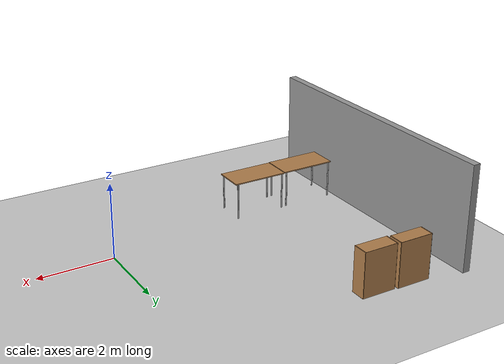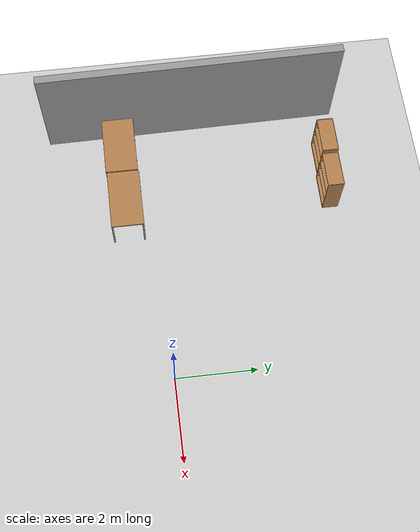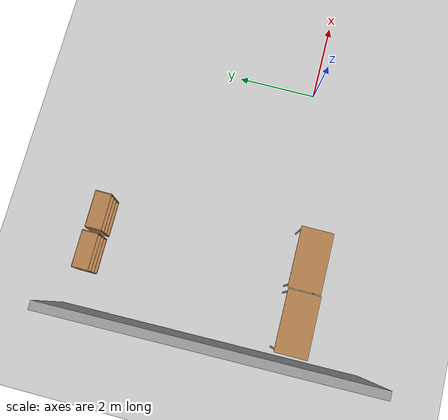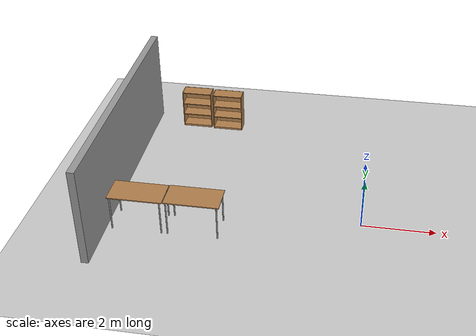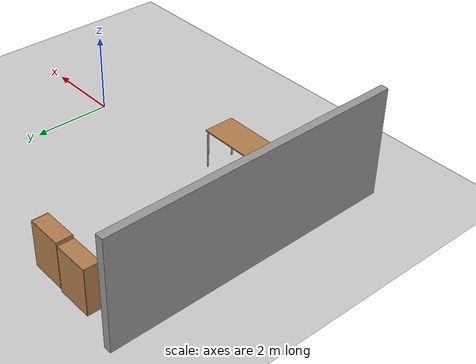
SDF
<sdf version="1.6">
 <world name="default">
  <model name="ground_plane">
   <static>1</static>
   <link name="link">
    <collision name="collision">
     <geometry><plane><normal>0 0 1</normal><size>100 100</size></plane></geometry>
     <surface>
      <contact><collide_bitmask>65535</collide_bitmask></contact>
      <friction><ode><mu>100</mu><mu2>50</mu2></ode></friction>
     </surface>
    </collision>
    <visual name="visual">
     <cast_shadows>0</cast_shadows>
     <geometry><plane><normal>0 0 1</normal><size>100 100</size></plane></geometry>
     <material>
      <script><uri>file://media/materials/scripts/gazebo.material</uri><name>Gazebo/Grey</name></script>
     </material>
    </visual>
   </link>
  </model>
  <model name="grey_wall_0">
   <static>1</static>
   <link name="link">
    <pose>0 0 1.4 0 -0 0</pose>
    <collision name="collision"><geometry><box><size>7.5 0.2 2.8</size></box></geometry></collision>
    <visual name="visual">
     <cast_shadows>0</cast_shadows>
     <geometry><box><size>7.5 0.2 2.8</size></box></geometry>
     <material>
      <script>
       <uri>model://grey_wall/materials/scripts</uri>
       <uri>model://grey_wall/materials/textures</uri>
       <name>vrc/grey_wall</name>
      </script>
     </material>
    </visual>
   </link>
   <pose>-6.9051 1.14817 0 0 0 -1.55661</pose>
  </model>
  <model name="table_8">
   <static>1</static>
   <link name="link">
    <collision name="surface">
     <pose>0 0 1 0 -0 0</pose>
     <geometry><box><size>1.5 0.8 0.03</size></box></geometry>
     <surface><friction><ode><mu>0.6</mu><mu2>0.6</mu2></ode></friction></surface>
    </collision>
    <visual name="visual1">
     <pose>0 0 1 0 -0 0</pose>
     <geometry><box><size>1.5 0.8 0.03</size></box></geometry>
     <material>
      <script><uri>file://media/materials/scripts/gazebo.material</uri><name>Gazebo/Wood</name></script>
     </material>
    </visual>
    <collision name="front_left_leg">
     <pose>0.68 0.38 0.5 0 -0 0</pose>
     <geometry><cylinder><radius>0.02</radius><length>1</length></cylinder></geometry>
    </collision>
    <visual name="front_left_leg">
     <pose>0.68 0.38 0.5 0 -0 0</pose>
     <geometry><cylinder><radius>0.02</radius><length>1</length></cylinder></geometry>
     <material>
      <script><uri>file://media/materials/scripts/gazebo.material</uri><name>Gazebo/Grey</name></script>
     </material>
    </visual>
    <collision name="front_right_leg">
     <pose>0.68 -0.38 0.5 0 -0 0</pose>
     <geometry><cylinder><radius>0.02</radius><length>1</length></cylinder></geometry>
    </collision>
    <visual name="front_right_leg">
     <pose>0.68 -0.38 0.5 0 -0 0</pose>
     <geometry><cylinder><radius>0.02</radius><length>1</length></cylinder></geometry>
     <material>
      <script><uri>file://media/materials/scripts/gazebo.material</uri><name>Gazebo/Grey</name></script>
     </material>
    </visual>
    <collision name="back_right_leg">
     <pose>-0.68 -0.38 0.5 0 -0 0</pose>
     <geometry><cylinder><radius>0.02</radius><length>1</length></cylinder></geometry>
    </collision>
    <visual name="back_right_leg">
     <pose>-0.68 -0.38 0.5 0 -0 0</pose>
     <geometry><cylinder><radius>0.02</radius><length>1</length></cylinder></geometry>
     <material>
      <script><uri>file://media/materials/scripts/gazebo.material</uri><name>Gazebo/Grey</name></script>
     </material>
    </visual>
    <collision name="back_left_leg">
     <pose>-0.68 0.38 0.5 0 -0 0</pose>
     <geometry><cylinder><radius>0.02</radius><length>1</length></cylinder></geometry>
    </collision>
    <visual name="back_left_leg">
     <pose>-0.68 0.38 0.5 0 -0 0</pose>
     <geometry><cylinder><radius>0.02</radius><length>1</length></cylinder></geometry>
     <material>
      <script><uri>file://media/materials/scripts/gazebo.material</uri><name>Gazebo/Grey</name></script>
     </material>
    </visual>
   </link>
   <pose>-5.92661 -0.763536 0 0 -0 0</pose>
  </model>
  <model name="table_10">
   <static>1</static>
   <link name="link">
    <collision name="surface">
     <pose>0 0 1 0 -0 0</pose>
     <geometry><box><size>1.5 0.8 0.03</size></box></geometry>
     <surface><friction><ode><mu>0.6</mu><mu2>0.6</mu2></ode></friction></surface>
    </collision>
    <visual name="visual1">
     <pose>0 0 1 0 -0 0</pose>
     <geometry><box><size>1.5 0.8 0.03</size></box></geometry>
     <material>
      <script><uri>file://media/materials/scripts/gazebo.material</uri><name>Gazebo/Wood</name></script>
     </material>
    </visual>
    <collision name="front_left_leg">
     <pose>0.68 0.38 0.5 0 -0 0</pose>
     <geometry><cylinder><radius>0.02</radius><length>1</length></cylinder></geometry>
    </collision>
    <visual name="front_left_leg">
     <pose>0.68 0.38 0.5 0 -0 0</pose>
     <geometry><cylinder><radius>0.02</radius><length>1</length></cylinder></geometry>
     <material>
      <script><uri>file://media/materials/scripts/gazebo.material</uri><name>Gazebo/Grey</name></script>
     </material>
    </visual>
    <collision name="front_right_leg">
     <pose>0.68 -0.38 0.5 0 -0 0</pose>
     <geometry><cylinder><radius>0.02</radius><length>1</length></cylinder></geometry>
    </collision>
    <visual name="front_right_leg">
     <pose>0.68 -0.38 0.5 0 -0 0</pose>
     <geometry><cylinder><radius>0.02</radius><length>1</length></cylinder></geometry>
     <material>
      <script><uri>file://media/materials/scripts/gazebo.material</uri><name>Gazebo/Grey</name></script>
     </material>
    </visual>
    <collision name="back_right_leg">
     <pose>-0.68 -0.38 0.5 0 -0 0</pose>
     <geometry><cylinder><radius>0.02</radius><length>1</length></cylinder></geometry>
    </collision>
    <visual name="back_right_leg">
     <pose>-0.68 -0.38 0.5 0 -0 0</pose>
     <geometry><cylinder><radius>0.02</radius><length>1</length></cylinder></geometry>
     <material>
      <script><uri>file://media/materials/scripts/gazebo.material</uri><name>Gazebo/Grey</name></script>
     </material>
    </visual>
    <collision name="back_left_leg">
     <pose>-0.68 0.38 0.5 0 -0 0</pose>
     <geometry><cylinder><radius>0.02</radius><length>1</length></cylinder></geometry>
    </collision>
    <visual name="back_left_leg">
     <pose>-0.68 0.38 0.5 0 -0 0</pose>
     <geometry><cylinder><radius>0.02</radius><length>1</length></cylinder></geometry>
     <material>
      <script><uri>file://media/materials/scripts/gazebo.material</uri><name>Gazebo/Grey</name></script>
     </material>
    </visual>
   </link>
   <pose>-4.40357 -0.743529 0 0 -0 0</pose>
  </model>
  <model name="bookshelf">
   <static>1</static>
   <link name="link">
    <inertial><mass>1</mass></inertial>
    <collision name="back">
     <pose>0 0.005 0.6 0 -0 0</pose>
     <geometry><box><size>0.9 0.01 1.2</size></box></geometry>
    </collision>
    <visual name="visual1">
     <pose>0 0.005 0.6 0 -0 0</pose>
     <geometry><box><size>0.9 0.01 1.2</size></box></geometry>
     <material>
      <script><uri>file://media/materials/scripts/gazebo.material</uri><name>Gazebo/Wood</name></script>
     </material>
    </visual>
    <collision name="left_side">
     <pose>0.45 -0.195 0.6 0 -0 0</pose>
     <geometry><box><size>0.02 0.4 1.2</size></box></geometry>
    </collision>
    <visual name="visual2">
     <pose>0.45 -0.195 0.6 0 -0 0</pose>
     <geometry><box><size>0.02 0.4 1.2</size></box></geometry>
     <material>
      <script><uri>file://media/materials/scripts/gazebo.material</uri><name>Gazebo/Wood</name></script>
     </material>
    </visual>
    <collision name="right_side">
     <pose>-0.45 -0.195 0.6 0 -0 0</pose>
     <geometry><box><size>0.02 0.4 1.2</size></box></geometry>
    </collision>
    <visual name="visual3">
     <pose>-0.45 -0.195 0.6 0 -0 0</pose>
     <geometry><box><size>0.02 0.4 1.2</size></box></geometry>
     <material>
      <script><uri>file://media/materials/scripts/gazebo.material</uri><name>Gazebo/Wood</name></script>
     </material>
    </visual>
    <collision name="bottom">
     <pose>0 -0.195 0.03 0 -0 0</pose>
     <geometry><box><size>0.88 0.4 0.06</size></box></geometry>
    </collision>
    <visual name="visual4">
     <pose>0 -0.195 0.03 0 -0 0</pose>
     <geometry><box><size>0.88 0.4 0.06</size></box></geometry>
     <material>
      <script><uri>file://media/materials/scripts/gazebo.material</uri><name>Gazebo/Wood</name></script>
     </material>
    </visual>
    <collision name="top">
     <pose>0 -0.195 1.19 0 -0 0</pose>
     <geometry><box><size>0.88 0.4 0.02</size></box></geometry>
    </collision>
    <visual name="visual5">
     <pose>0 -0.195 1.19 0 -0 0</pose>
     <geometry><box><size>0.88 0.4 0.02</size></box></geometry>
     <material>
      <script><uri>file://media/materials/scripts/gazebo.material</uri><name>Gazebo/Wood</name></script>
     </material>
    </visual>
    <collision name="low_shelf">
     <pose>0 -0.195 0.43 0 -0 0</pose>
     <geometry><box><size>0.88 0.4 0.02</size></box></geometry>
    </collision>
    <visual name="visual6">
     <pose>0 -0.195 0.43 0 -0 0</pose>
     <geometry><box><size>0.88 0.4 0.02</size></box></geometry>
     <material>
      <script><uri>file://media/materials/scripts/gazebo.material</uri><name>Gazebo/Wood</name></script>
     </material>
    </visual>
    <collision name="high_shelf">
     <pose>0 -0.195 0.8 0 -0 0</pose>
     <geometry><box><size>0.88 0.4 0.02</size></box></geometry>
    </collision>
    <visual name="visual7">
     <pose>0 -0.195 0.8 0 -0 0</pose>
     <geometry><box><size>0.88 0.4 0.02</size></box></geometry>
     <material>
      <script><uri>file://media/materials/scripts/gazebo.material</uri><name>Gazebo/Wood</name></script>
     </material>
    </visual>
   </link>
   <pose>-5.52954 4.67114 0 0 -0 0</pose>
  </model>
  <model name="bookshelf_0">
   <static>1</static>
   <link name="link">
    <inertial><mass>1</mass></inertial>
    <collision name="back">
     <pose>0 0.005 0.6 0 -0 0</pose>
     <geometry><box><size>0.9 0.01 1.2</size></box></geometry>
    </collision>
    <visual name="visual1">
     <pose>0 0.005 0.6 0 -0 0</pose>
     <geometry><box><size>0.9 0.01 1.2</size></box></geometry>
     <material>
      <script><uri>file://media/materials/scripts/gazebo.material</uri><name>Gazebo/Wood</name></script>
     </material>
    </visual>
    <collision name="left_side">
     <pose>0.45 -0.195 0.6 0 -0 0</pose>
     <geometry><box><size>0.02 0.4 1.2</size></box></geometry>
    </collision>
    <visual name="visual2">
     <pose>0.45 -0.195 0.6 0 -0 0</pose>
     <geometry><box><size>0.02 0.4 1.2</size></box></geometry>
     <material>
      <script><uri>file://media/materials/scripts/gazebo.material</uri><name>Gazebo/Wood</name></script>
     </material>
    </visual>
    <collision name="right_side">
     <pose>-0.45 -0.195 0.6 0 -0 0</pose>
     <geometry><box><size>0.02 0.4 1.2</size></box></geometry>
    </collision>
    <visual name="visual3">
     <pose>-0.45 -0.195 0.6 0 -0 0</pose>
     <geometry><box><size>0.02 0.4 1.2</size></box></geometry>
     <material>
      <script><uri>file://media/materials/scripts/gazebo.material</uri><name>Gazebo/Wood</name></script>
     </material>
    </visual>
    <collision name="bottom">
     <pose>0 -0.195 0.03 0 -0 0</pose>
     <geometry><box><size>0.88 0.4 0.06</size></box></geometry>
    </collision>
    <visual name="visual4">
     <pose>0 -0.195 0.03 0 -0 0</pose>
     <geometry><box><size>0.88 0.4 0.06</size></box></geometry>
     <material>
      <script><uri>file://media/materials/scripts/gazebo.material</uri><name>Gazebo/Wood</name></script>
     </material>
    </visual>
    <collision name="top">
     <pose>0 -0.195 1.19 0 -0 0</pose>
     <geometry><box><size>0.88 0.4 0.02</size></box></geometry>
    </collision>
    <visual name="visual5">
     <pose>0 -0.195 1.19 0 -0 0</pose>
     <geometry><box><size>0.88 0.4 0.02</size></box></geometry>
     <material>
      <script><uri>file://media/materials/scripts/gazebo.material</uri><name>Gazebo/Wood</name></script>
     </material>
    </visual>
    <collision name="low_shelf">
     <pose>0 -0.195 0.43 0 -0 0</pose>
     <geometry><box><size>0.88 0.4 0.02</size></box></geometry>
    </collision>
    <visual name="visual6">
     <pose>0 -0.195 0.43 0 -0 0</pose>
     <geometry><box><size>0.88 0.4 0.02</size></box></geometry>
     <material>
      <script><uri>file://media/materials/scripts/gazebo.material</uri><name>Gazebo/Wood</name></script>
     </material>
    </visual>
    <collision name="high_shelf">
     <pose>0 -0.195 0.8 0 -0 0</pose>
     <geometry><box><size>0.88 0.4 0.02</size></box></geometry>
    </collision>
    <visual name="visual7">
     <pose>0 -0.195 0.8 0 -0 0</pose>
     <geometry><box><size>0.88 0.4 0.02</size></box></geometry>
     <material>
      <script><uri>file://media/materials/scripts/gazebo.material</uri><name>Gazebo/Wood</name></script>
     </material>
    </visual>
   </link>
   <pose>-4.5447 4.63763 0 0 -0 0</pose>
  </model>
 </world>
</sdf>
